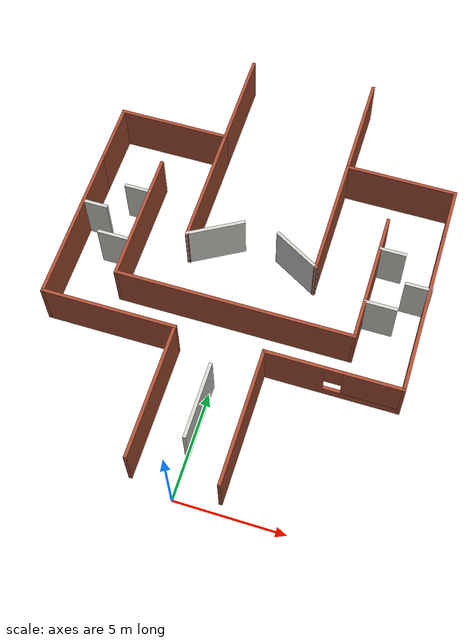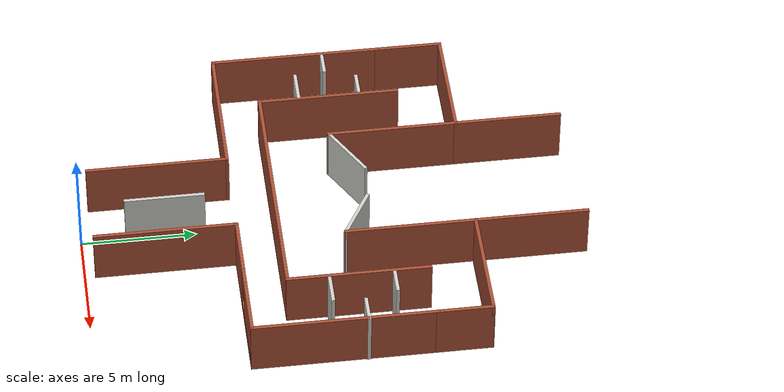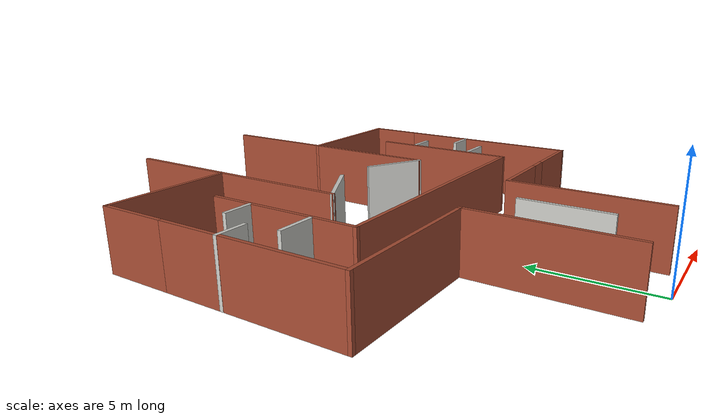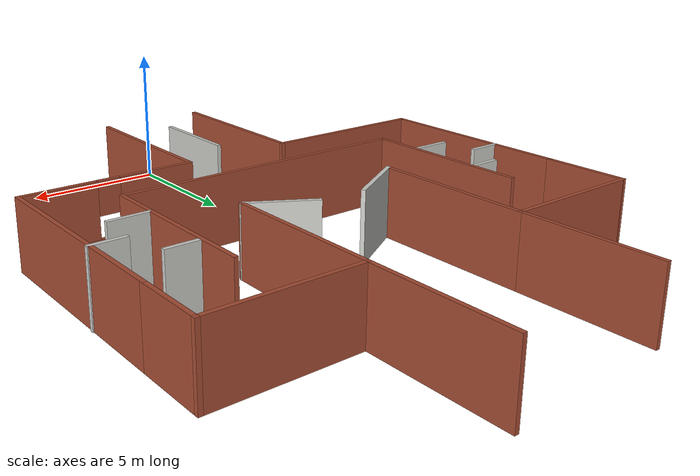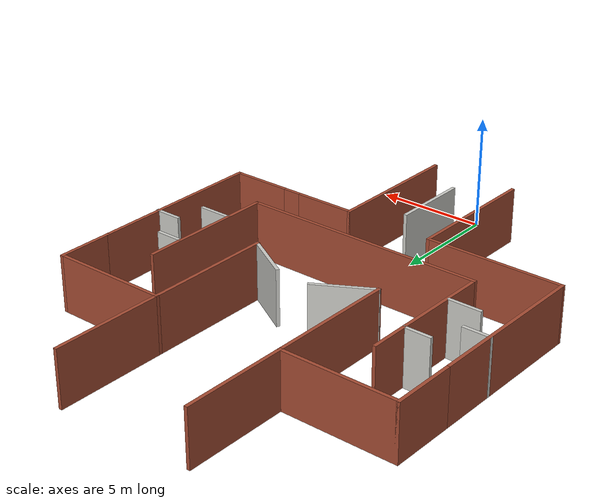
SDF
<?xml version='1.0'?>
<sdf version='1.6'>
  <model name='robotech_vc_maze'>
    <pose frame=''>0.026956 11.0864 0 0 -0 0</pose>
    <link name='Wall_13'>
      <collision name='Wall_13_Collision'>
        <geometry>
          <box>
            <size>3.5 0.15 2.5</size>
          </box>
        </geometry>
        <pose frame=''>0 0 1.25 0 -0 0</pose>
      </collision>
      <visual name='Wall_13_Visual'>
        <pose frame=''>0 0 1.25 0 -0 0</pose>
        <geometry>
          <box>
            <size>3.5 0.15 2.5</size>
          </box>
        </geometry>
        <material>
          <script>
            <uri>file://media/materials/scripts/gazebo.material</uri>
            <name>Gazebo/CeilingTiled</name>
          </script>
          <ambient>1 1 1 1</ambient>
        </material>
        <meta>
          <layer>0</layer>
        </meta>
      </visual>
      <pose frame=''>0.00196 -7.39954 0 0 -0 1.5708</pose>
    </link>
    <link name='Wall_15'>
      <collision name='Wall_15_Collision'>
        <geometry>
          <box>
            <size>6.25 0.15 2.5</size>
          </box>
        </geometry>
        <pose frame=''>0 0 1.25 0 -0 0</pose>
      </collision>
      <visual name='Wall_15_Visual'>
        <pose frame=''>0 0 1.25 0 -0 0</pose>
        <geometry>
          <box>
            <size>6.25 0.15 2.5</size>
          </box>
        </geometry>
        <material>
          <script>
            <uri>file://media/materials/scripts/gazebo.material</uri>
            <name>Gazebo/Bricks</name>
          </script>
          <ambient>1 1 1 1</ambient>
        </material>
        <meta>
          <layer>0</layer>
        </meta>
      </visual>
      <pose frame=''>1.97551 -7.52132 0 0 -0 1.5708</pose>
    </link>
    <link name='Wall_17'>
      <collision name='Wall_17_Collision'>
        <geometry>
          <box>
            <size>6.25 0.15 2.5</size>
          </box>
        </geometry>
        <pose frame=''>0 0 1.25 0 -0 0</pose>
      </collision>
      <visual name='Wall_17_Visual'>
        <pose frame=''>0 0 1.25 0 -0 0</pose>
        <geometry>
          <box>
            <size>6.25 0.15 2.5</size>
          </box>
        </geometry>
        <material>
          <script>
            <uri>file://media/materials/scripts/gazebo.material</uri>
            <name>Gazebo/Bricks</name>
          </script>
          <ambient>1 1 1 1</ambient>
        </material>
        <meta>
          <layer>0</layer>
        </meta>
      </visual>
      <pose frame=''>-5.06006 -4.47868 0 0 -0 3.14159</pose>
    </link>
    <link name='Wall_18'>
      <collision name='Wall_18_Collision'>
        <geometry>
          <box>
            <size>7.5 0.15 2.5</size>
          </box>
        </geometry>
        <pose frame=''>0 0 1.25 0 -0 0</pose>
      </collision>
      <visual name='Wall_18_Visual'>
        <pose frame=''>0 0 1.25 0 -0 0</pose>
        <geometry>
          <box>
            <size>7.5 0.15 2.5</size>
          </box>
        </geometry>
        <material>
          <script>
            <uri>file://media/materials/scripts/gazebo.material</uri>
            <name>Gazebo/Bricks</name>
          </script>
          <ambient>1 1 1 1</ambient>
        </material>
        <meta>
          <layer>0</layer>
        </meta>
      </visual>
      <pose frame=''>-8.11007 -0.803679 0 0 -0 1.5708</pose>
    </link>
    <link name='Wall_20'>
      <pose frame=''>5.02551 -4.47132 0 0 -0 0</pose>
      <visual name='Wall_20_Visual_0'>
        <pose frame=''>-1.74702 0 1.25 0 -0 0</pose>
        <geometry>
          <box>
            <size>2.75596 0.15 2.5</size>
          </box>
        </geometry>
        <material>
          <script>
            <uri>file://media/materials/scripts/gazebo.material</uri>
            <name>Gazebo/Bricks</name>
          </script>
          <ambient>1 1 1 1</ambient>
        </material>
        <meta>
          <layer>0</layer>
        </meta>
      </visual>
      <collision name='Wall_20_Collision_0'>
        <geometry>
          <box>
            <size>2.75596 0.15 2.5</size>
          </box>
        </geometry>
        <pose frame=''>-1.74702 0 1.25 0 -0 0</pose>
      </collision>
      <visual name='Wall_20_Visual_1'>
        <pose frame=''>1.37798 0 0.25 0 -0 0</pose>
        <geometry>
          <box>
            <size>3.49404 0.15 0.5</size>
          </box>
        </geometry>
        <material>
          <script>
            <uri>file://media/materials/scripts/gazebo.material</uri>
            <name>Gazebo/Bricks</name>
          </script>
          <ambient>1 1 1 1</ambient>
        </material>
        <meta>
          <layer>0</layer>
        </meta>
      </visual>
      <collision name='Wall_20_Collision_1'>
        <geometry>
          <box>
            <size>3.49404 0.15 0.5</size>
          </box>
        </geometry>
        <pose frame=''>1.37798 0 0.25 0 -0 0</pose>
      </collision>
      <visual name='Wall_20_Visual_2'>
        <pose frame=''>1.77798 0 1.5 0 -0 0</pose>
        <geometry>
          <box>
            <size>2.69404 0.15 2</size>
          </box>
        </geometry>
        <material>
          <script>
            <uri>file://media/materials/scripts/gazebo.material</uri>
            <name>Gazebo/Bricks</name>
          </script>
          <ambient>1 1 1 1</ambient>
        </material>
        <meta>
          <layer>0</layer>
        </meta>
      </visual>
      <collision name='Wall_20_Collision_2'>
        <geometry>
          <box>
            <size>2.69404 0.15 2</size>
          </box>
        </geometry>
        <pose frame=''>1.77798 0 1.5 0 -0 0</pose>
      </collision>
      <visual name='Wall_20_Visual_3'>
        <pose frame=''>0.03096 0 1.9 0 -0 0</pose>
        <geometry>
          <box>
            <size>0.8 0.15 1.2</size>
          </box>
        </geometry>
        <material>
          <script>
            <uri>file://media/materials/scripts/gazebo.material</uri>
            <name>Gazebo/Bricks</name>
          </script>
          <ambient>1 1 1 1</ambient>
        </material>
        <meta>
          <layer>0</layer>
        </meta>
      </visual>
      <collision name='Wall_20_Collision_3'>
        <geometry>
          <box>
            <size>0.8 0.15 1.2</size>
          </box>
        </geometry>
        <pose frame=''>0.03096 0 1.9 0 -0 0</pose>
      </collision>
    </link>
    <link name='Wall_21'>
      <collision name='Wall_21_Collision'>
        <geometry>
          <box>
            <size>8 0.15 2.5</size>
          </box>
        </geometry>
        <pose frame=''>0 0 1.25 0 -0 0</pose>
      </collision>
      <visual name='Wall_21_Visual'>
        <pose frame=''>0 0 1.25 0 -0 0</pose>
        <geometry>
          <box>
            <size>8 0.15 2.5</size>
          </box>
        </geometry>
        <material>
          <script>
            <uri>file://media/materials/scripts/gazebo.material</uri>
            <name>Gazebo/Bricks</name>
          </script>
          <ambient>1 1 1 1</ambient>
        </material>
        <meta>
          <layer>0</layer>
        </meta>
      </visual>
      <pose frame=''>8.07551 -0.54632 0 0 -0 1.5708</pose>
    </link>
    <link name='Wall_25'>
      <collision name='Wall_25_Collision'>
        <geometry>
          <box>
            <size>11 0.15 2.5</size>
          </box>
        </geometry>
        <pose frame=''>0 0 1.25 0 -0 0</pose>
      </collision>
      <visual name='Wall_25_Visual'>
        <pose frame=''>0 0 1.25 0 -0 0</pose>
        <geometry>
          <box>
            <size>11 0.15 2.5</size>
          </box>
        </geometry>
        <material>
          <script>
            <uri>file://media/materials/scripts/gazebo.material</uri>
            <name>Gazebo/Bricks</name>
          </script>
          <ambient>1 1 1 1</ambient>
        </material>
        <meta>
          <layer>0</layer>
        </meta>
      </visual>
      <pose frame=''>0.045922 -2.67982 0 0 -0 0</pose>
    </link>
    <link name='Wall_34'>
      <collision name='Wall_34_Collision'>
        <geometry>
          <box>
            <size>1.25 0.15 2.5</size>
          </box>
        </geometry>
        <pose frame=''>0 0 1.25 0 -0 0</pose>
      </collision>
      <visual name='Wall_34_Visual'>
        <pose frame=''>0 0 1.25 0 -0 0</pose>
        <geometry>
          <box>
            <size>1.25 0.15 2.5</size>
          </box>
        </geometry>
        <material>
          <script>
            <uri>file://media/materials/scripts/gazebo.material</uri>
            <name>Gazebo/CeilingTiled</name>
          </script>
          <ambient>1 1 1 1</ambient>
        </material>
        <meta>
          <layer>0</layer>
        </meta>
      </visual>
      <pose frame=''>-7.56291 0.395233 0 0 -0 0</pose>
    </link>
    <link name='Wall_36'>
      <collision name='Wall_36_Collision'>
        <geometry>
          <box>
            <size>1.25 0.15 2.5</size>
          </box>
        </geometry>
        <pose frame=''>0 0 1.25 0 -0 0</pose>
      </collision>
      <visual name='Wall_36_Visual'>
        <pose frame=''>0 0 1.25 0 -0 0</pose>
        <geometry>
          <box>
            <size>1.25 0.15 2.5</size>
          </box>
        </geometry>
        <material>
          <script>
            <uri>file://media/materials/scripts/gazebo.material</uri>
            <name>Gazebo/CeilingTiled</name>
          </script>
          <ambient>1 1 1 1</ambient>
        </material>
        <meta>
          <layer>0</layer>
        </meta>
      </visual>
      <pose frame=''>-5.9554 1.74885 0 0 -0 3.14159</pose>
    </link>
    <link name='Wall_38'>
      <collision name='Wall_38_Collision'>
        <geometry>
          <box>
            <size>6.25 0.15 2.5</size>
          </box>
        </geometry>
        <pose frame=''>0 0 1.25 0 -0 0</pose>
      </collision>
      <visual name='Wall_38_Visual'>
        <pose frame=''>0 0 1.25 0 -0 0</pose>
        <geometry>
          <box>
            <size>6.25 0.15 2.5</size>
          </box>
        </geometry>
        <material>
          <script>
            <uri>file://media/materials/scripts/gazebo.material</uri>
            <name>Gazebo/Bricks</name>
          </script>
          <ambient>1 1 1 1</ambient>
        </material>
        <meta>
          <layer>0</layer>
        </meta>
      </visual>
      <pose frame=''>-5.37908 0.370179 0 0 -0 1.5708</pose>
    </link>
    <link name='Wall_43'>
      <collision name='Wall_43_Collision'>
        <geometry>
          <box>
            <size>1.5 0.15 2.5</size>
          </box>
        </geometry>
        <pose frame=''>0 0 1.25 0 -0 0</pose>
      </collision>
      <visual name='Wall_43_Visual'>
        <pose frame=''>0 0 1.25 0 -0 0</pose>
        <geometry>
          <box>
            <size>1.5 0.15 2.5</size>
          </box>
        </geometry>
        <material>
          <script>
            <uri>file://media/materials/scripts/gazebo.material</uri>
            <name>Gazebo/CeilingTiled</name>
          </script>
          <ambient>1 1 1 1</ambient>
        </material>
        <meta>
          <layer>0</layer>
        </meta>
      </visual>
      <pose frame=''>-6.14109 -0.935126 0 0 -0 3.14159</pose>
    </link>
    <link name='Wall_45'>
      <collision name='Wall_45_Collision'>
        <geometry>
          <box>
            <size>6.25 0.15 2.5</size>
          </box>
        </geometry>
        <pose frame=''>0 0 1.25 0 -0 0</pose>
      </collision>
      <visual name='Wall_45_Visual'>
        <pose frame=''>0 0 1.25 0 -0 0</pose>
        <geometry>
          <box>
            <size>6.25 0.15 2.5</size>
          </box>
        </geometry>
        <material>
          <script>
            <uri>file://media/materials/scripts/gazebo.material</uri>
            <name>Gazebo/Bricks</name>
          </script>
          <ambient>1 1 1 1</ambient>
        </material>
        <meta>
          <layer>0</layer>
        </meta>
      </visual>
      <pose frame=''>5.47092 0.370179 0 0 -0 1.5708</pose>
    </link>
    <link name='Wall_47'>
      <collision name='Wall_47_Collision'>
        <geometry>
          <box>
            <size>1.5 0.15 2.5</size>
          </box>
        </geometry>
        <pose frame=''>0 0 1.25 0 -0 0</pose>
      </collision>
      <visual name='Wall_47_Visual'>
        <pose frame=''>0 0 1.25 0 -0 0</pose>
        <geometry>
          <box>
            <size>1.5 0.15 2.5</size>
          </box>
        </geometry>
        <material>
          <script>
            <uri>file://media/materials/scripts/gazebo.material</uri>
            <name>Gazebo/CeilingTiled</name>
          </script>
          <ambient>1 1 1 1</ambient>
        </material>
        <meta>
          <layer>0</layer>
        </meta>
      </visual>
      <pose frame=''>6.18468 -0.900812 0 0 -0 0</pose>
    </link>
    <link name='Wall_49'>
      <collision name='Wall_49_Collision'>
        <geometry>
          <box>
            <size>1.25 0.15 2.5</size>
          </box>
        </geometry>
        <pose frame=''>0 0 1.25 0 -0 0</pose>
      </collision>
      <visual name='Wall_49_Visual'>
        <pose frame=''>0 0 1.25 0 -0 0</pose>
        <geometry>
          <box>
            <size>1.25 0.15 2.5</size>
          </box>
        </geometry>
        <material>
          <script>
            <uri>file://media/materials/scripts/gazebo.material</uri>
            <name>Gazebo/CeilingTiled</name>
          </script>
          <ambient>1 1 1 1</ambient>
        </material>
        <meta>
          <layer>0</layer>
        </meta>
      </visual>
      <pose frame=''>7.56291 0.472024 0 0 -0 3.14159</pose>
    </link>
    <link name='Wall_51'>
      <collision name='Wall_51_Collision'>
        <geometry>
          <box>
            <size>1.25 0.15 2.5</size>
          </box>
        </geometry>
        <pose frame=''>0 0 1.25 0 -0 0</pose>
      </collision>
      <visual name='Wall_51_Visual'>
        <pose frame=''>0 0 1.25 0 -0 0</pose>
        <geometry>
          <box>
            <size>1.25 0.15 2.5</size>
          </box>
        </geometry>
        <material>
          <script>
            <uri>file://media/materials/scripts/gazebo.material</uri>
            <name>Gazebo/CeilingTiled</name>
          </script>
          <ambient>1 1 1 1</ambient>
        </material>
        <meta>
          <layer>0</layer>
        </meta>
      </visual>
      <pose frame=''>6.05968 1.87917 0 0 -0 0</pose>
    </link>
    <link name='Wall_56'>
      <collision name='Wall_56_Collision'>
        <geometry>
          <box>
            <size>3 0.15 2.5</size>
          </box>
        </geometry>
        <pose frame=''>0 0 1.25 0 -0 0</pose>
      </collision>
      <visual name='Wall_56_Visual'>
        <pose frame=''>0 0 1.25 0 -0 0</pose>
        <geometry>
          <box>
            <size>3 0.15 2.5</size>
          </box>
        </geometry>
        <material>
          <script>
            <uri>file://media/materials/scripts/gazebo.material</uri>
            <name>Gazebo/Bricks</name>
          </script>
          <ambient>1 1 1 1</ambient>
        </material>
        <meta>
          <layer>0</layer>
        </meta>
      </visual>
      <pose frame=''>-8.11007 4.29632 0 0 -0 1.5708</pose>
    </link>
    <link name='Wall_57'>
      <collision name='Wall_57_Collision'>
        <geometry>
          <box>
            <size>5.25 0.15 2.5</size>
          </box>
        </geometry>
        <pose frame=''>0 0 1.25 0 -0 0</pose>
      </collision>
      <visual name='Wall_57_Visual'>
        <pose frame=''>0 0 1.25 0 -0 0</pose>
        <geometry>
          <box>
            <size>5.25 0.15 2.5</size>
          </box>
        </geometry>
        <material>
          <script>
            <uri>file://media/materials/scripts/gazebo.material</uri>
            <name>Gazebo/Bricks</name>
          </script>
          <ambient>1 1 1 1</ambient>
        </material>
        <meta>
          <layer>0</layer>
        </meta>
      </visual>
      <pose frame=''>-5.56006 5.72132 0 0 -0 0</pose>
    </link>
    <link name='Wall_58'>
      <collision name='Wall_58_Collision'>
        <geometry>
          <box>
            <size>4.75 0.15 2.5</size>
          </box>
        </geometry>
        <pose frame=''>0 0 1.25 0 -0 0</pose>
      </collision>
      <visual name='Wall_58_Visual'>
        <pose frame=''>0 0 1.25 0 -0 0</pose>
        <geometry>
          <box>
            <size>4.75 0.15 2.5</size>
          </box>
        </geometry>
        <material>
          <script>
            <uri>file://media/materials/scripts/gazebo.material</uri>
            <name>Gazebo/Bricks</name>
          </script>
          <ambient>1 1 1 1</ambient>
        </material>
        <meta>
          <layer>0</layer>
        </meta>
      </visual>
      <pose frame=''>-3.01006 8.02132 0 0 -0 1.5708</pose>
    </link>
    <link name='Wall_60'>
      <collision name='Wall_60_Collision'>
        <geometry>
          <box>
            <size>2.5 0.15 2.5</size>
          </box>
        </geometry>
        <pose frame=''>0 0 1.25 0 -0 0</pose>
      </collision>
      <visual name='Wall_60_Visual'>
        <pose frame=''>0 0 1.25 0 -0 0</pose>
        <geometry>
          <box>
            <size>2.5 0.15 2.5</size>
          </box>
        </geometry>
        <material>
          <script>
            <uri>file://media/materials/scripts/gazebo.material</uri>
            <name>Gazebo/Bricks</name>
          </script>
          <ambient>1 1 1 1</ambient>
        </material>
        <meta>
          <layer>0</layer>
        </meta>
      </visual>
      <pose frame=''>8.07551 4.55368 0 0 -0 1.5708</pose>
    </link>
    <link name='Wall_64'>
      <collision name='Wall_64_Collision'>
        <geometry>
          <box>
            <size>5.25 0.15 2.5</size>
          </box>
        </geometry>
        <pose frame=''>0 0 1.25 0 -0 0</pose>
      </collision>
      <visual name='Wall_64_Visual'>
        <pose frame=''>0 0 1.25 0 -0 0</pose>
        <geometry>
          <box>
            <size>5.25 0.15 2.5</size>
          </box>
        </geometry>
        <material>
          <script>
            <uri>file://media/materials/scripts/gazebo.material</uri>
            <name>Gazebo/Bricks</name>
          </script>
          <ambient>1 1 1 1</ambient>
        </material>
        <meta>
          <layer>0</layer>
        </meta>
      </visual>
      <pose frame=''>5.52551 5.72868 0 0 -0 3.14159</pose>
    </link>
    <link name='Wall_67'>
      <collision name='Wall_67_Collision'>
        <geometry>
          <box>
            <size>5 0.15 2.5</size>
          </box>
        </geometry>
        <pose frame=''>0 0 1.25 0 -0 0</pose>
      </collision>
      <visual name='Wall_67_Visual'>
        <pose frame=''>0 0 1.25 0 -0 0</pose>
        <geometry>
          <box>
            <size>5 0.15 2.5</size>
          </box>
        </geometry>
        <material>
          <script>
            <uri>file://media/materials/scripts/gazebo.material</uri>
            <name>Gazebo/Bricks</name>
          </script>
          <ambient>1 1 1 1</ambient>
        </material>
        <meta>
          <layer>0</layer>
        </meta>
      </visual>
      <pose frame=''>2.97551 8.15368 0 0 -0 1.5708</pose>
    </link>
    <link name='Wall_69'>
      <collision name='Wall_69_Collision'>
        <geometry>
          <box>
            <size>5.75 0.15 2.5</size>
          </box>
        </geometry>
        <pose frame=''>0 0 1.25 0 -0 0</pose>
      </collision>
      <visual name='Wall_69_Visual'>
        <pose frame=''>0 0 1.25 0 -0 0</pose>
        <geometry>
          <box>
            <size>5.75 0.15 2.5</size>
          </box>
        </geometry>
        <material>
          <script>
            <uri>file://media/materials/scripts/gazebo.material</uri>
            <name>Gazebo/Bricks</name>
          </script>
          <ambient>1 1 1 1</ambient>
        </material>
        <meta>
          <layer>0</layer>
        </meta>
      </visual>
      <pose frame=''>2.97551 2.92868 0 0 -0 -1.5708</pose>
    </link>
    <link name='Wall_71'>
      <collision name='Wall_71_Collision'>
        <geometry>
          <box>
            <size>5.75 0.15 2.5</size>
          </box>
        </geometry>
        <pose frame=''>0 0 1.25 0 -0 0</pose>
      </collision>
      <visual name='Wall_71_Visual'>
        <pose frame=''>0 0 1.25 0 -0 0</pose>
        <geometry>
          <box>
            <size>5.75 0.15 2.5</size>
          </box>
        </geometry>
        <material>
          <script>
            <uri>file://media/materials/scripts/gazebo.material</uri>
            <name>Gazebo/Bricks</name>
          </script>
          <ambient>1 1 1 1</ambient>
        </material>
        <meta>
          <layer>0</layer>
        </meta>
      </visual>
      <pose frame=''>-3.01006 2.92132 0 0 -0 -1.5708</pose>
    </link>
    <link name='Wall_73'>
      <collision name='Wall_73_Collision'>
        <geometry>
          <box>
            <size>2.75 0.15 2.5</size>
          </box>
        </geometry>
        <pose frame=''>0 0 1.25 0 -0 0</pose>
      </collision>
      <visual name='Wall_73_Visual'>
        <pose frame=''>0 0 1.25 0 -0 0</pose>
        <geometry>
          <box>
            <size>2.75 0.15 2.5</size>
          </box>
        </geometry>
        <material>
          <script>
            <uri>file://media/materials/scripts/gazebo.material</uri>
            <name>Gazebo/CeilingTiled</name>
          </script>
          <ambient>1 1 1 1</ambient>
        </material>
        <meta>
          <layer>0</layer>
        </meta>
      </visual>
      <pose frame=''>-1.88423 0.77132 0 0 -0 0.523599</pose>
    </link>
    <link name='Wall_75'>
      <collision name='Wall_75_Collision'>
        <geometry>
          <box>
            <size>2.5 0.15 2.5</size>
          </box>
        </geometry>
        <pose frame=''>0 0 1.25 0 -0 0</pose>
      </collision>
      <visual name='Wall_75_Visual'>
        <pose frame=''>0 0 1.25 0 -0 0</pose>
        <geometry>
          <box>
            <size>2.5 0.15 2.5</size>
          </box>
        </geometry>
        <material>
          <script>
            <uri>file://media/materials/scripts/gazebo.material</uri>
            <name>Gazebo/CeilingTiled</name>
          </script>
          <ambient>1 1 1 1</ambient>
        </material>
        <meta>
          <layer>0</layer>
        </meta>
      </visual>
      <pose frame=''>1.95793 0.71618 0 0 -0 2.61799</pose>
    </link>
    <link name='Wall_9'>
      <collision name='Wall_9_Collision'>
        <geometry>
          <box>
            <size>6.25 0.15 2.5</size>
          </box>
        </geometry>
        <pose frame=''>0 0 1.25 0 -0 0</pose>
      </collision>
      <visual name='Wall_9_Visual'>
        <pose frame=''>0 0 1.25 0 -0 0</pose>
        <geometry>
          <box>
            <size>6.25 0.15 2.5</size>
          </box>
        </geometry>
        <material>
          <script>
            <uri>file://media/materials/scripts/gazebo.material</uri>
            <name>Gazebo/Bricks</name>
          </script>
          <ambient>1 1 1 1</ambient>
        </material>
        <meta>
          <layer>0</layer>
        </meta>
      </visual>
      <pose frame=''>-2.01006 -7.52868 0 0 -0 1.5708</pose>
    </link>
    <static>1</static>
  </model>
</sdf>
